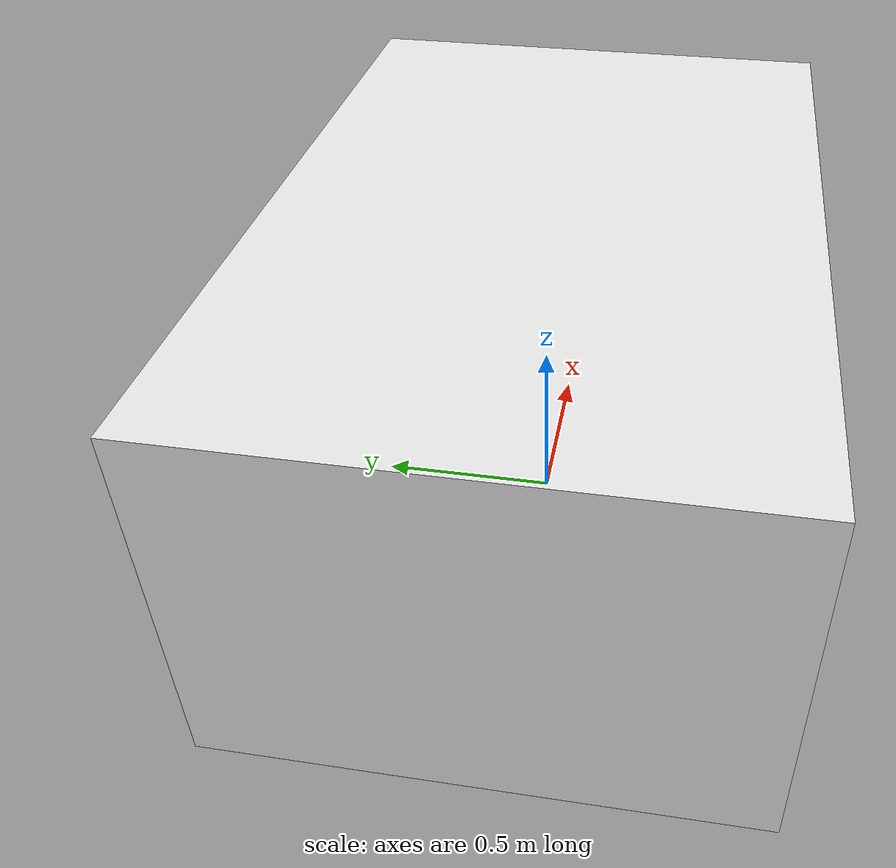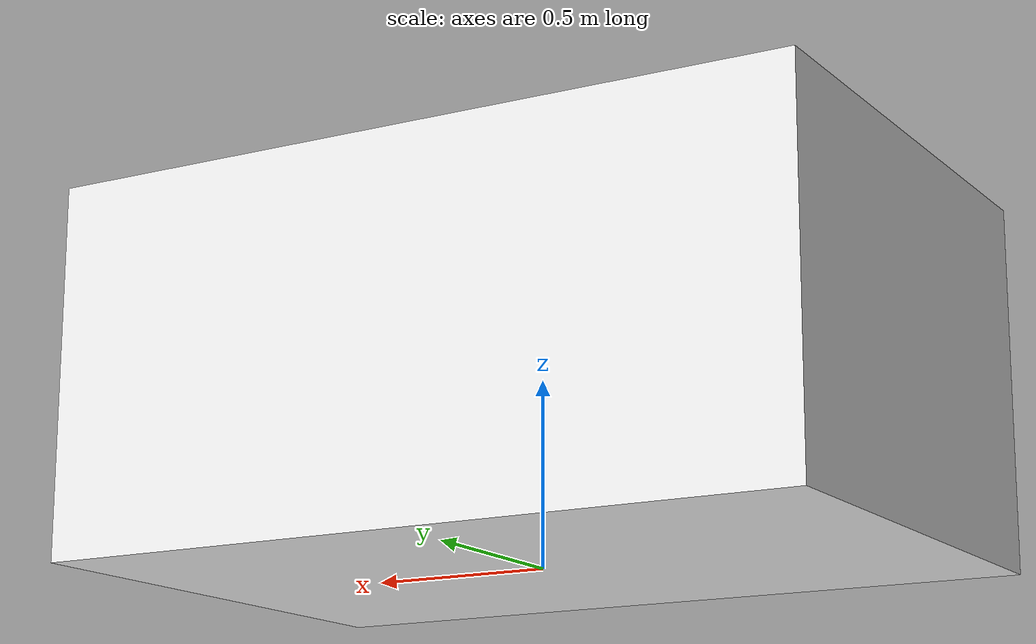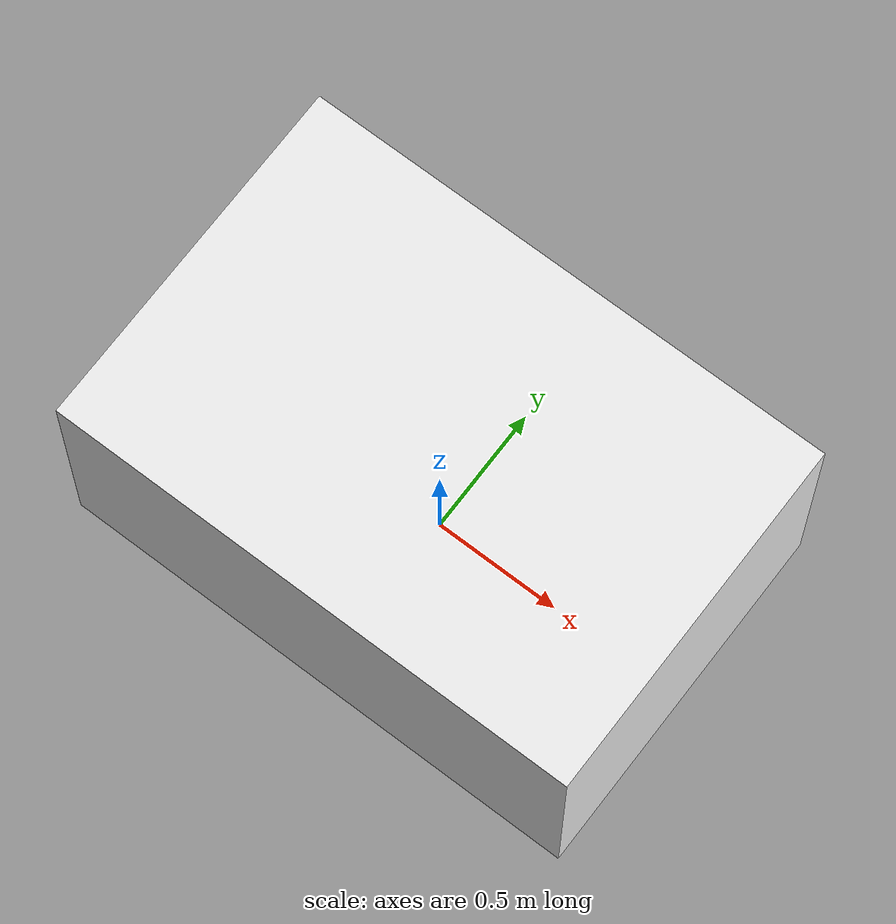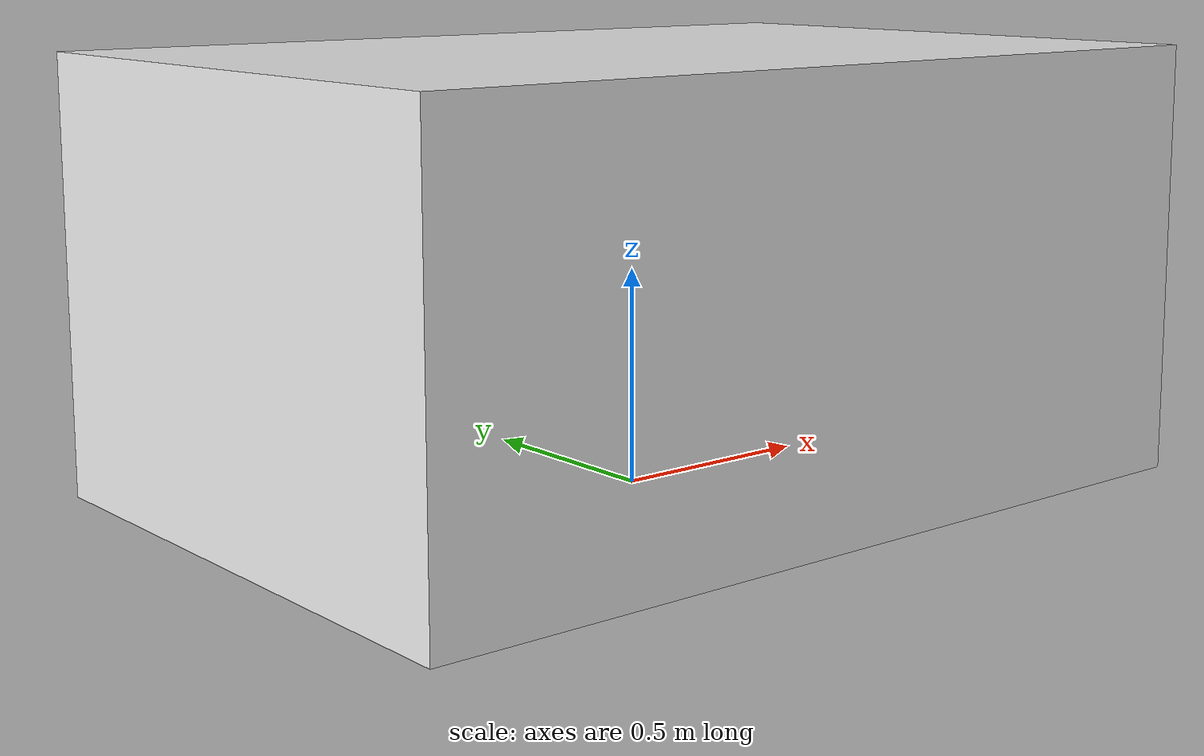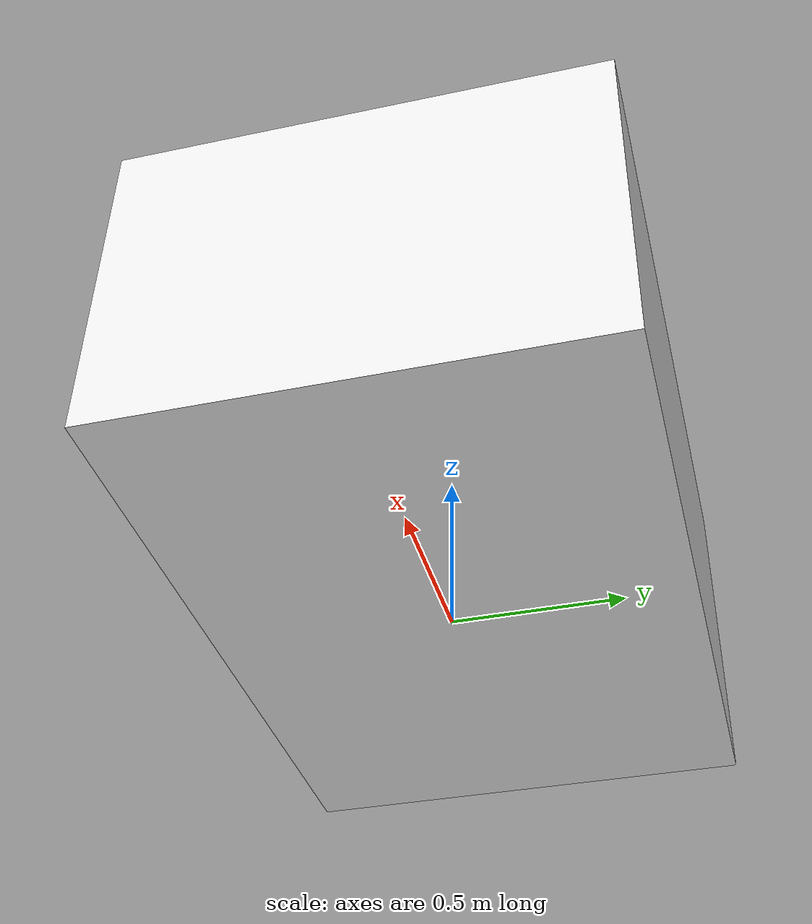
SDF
<?xml version="1.0"?>
<sdf version="1.5">
  <model name="block">
    <static>true</static>
    <link name="link">
      <collision name="collision">
        <geometry>
          <mesh>
            <uri>model://inlet_block_larger/meshes/inlet_block.obj</uri>
            <scale>1 1 1</scale>
          </mesh>
        </geometry>
        <surface>
          <friction>
            <ode>
              <mu>100</mu>
              <mu2>50</mu2>
            </ode>
          </friction>
        </surface>
      </collision>
      <visual name="visual">
        <geometry>
          <mesh>
            <uri>model://inlet_block_larger/meshes/inlet_block.obj</uri>
            <scale>1 1 1</scale>
          </mesh>
        </geometry>
        <material>
          <script>
            <uri>file://media/materials/scripts/gazebo.material</uri>
            <name>Gazebo/White</name>
          </script>
        </material>
      </visual>
    </link>
  </model>
</sdf>
